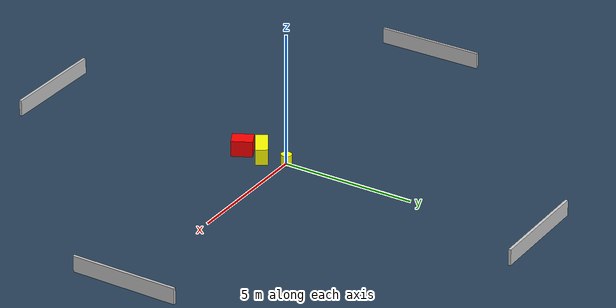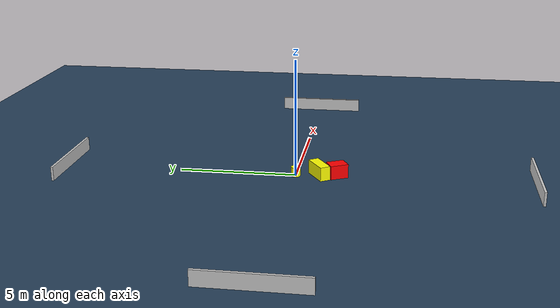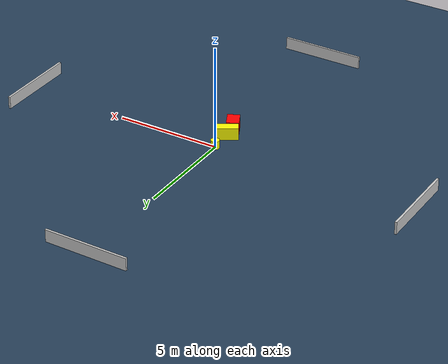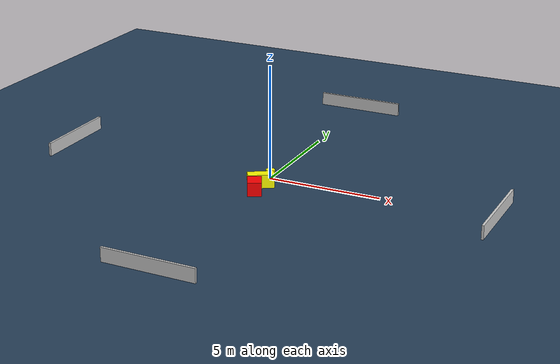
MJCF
<?xml version="1.0" ?>
<mujoco model="generated_environment">
  <option timestep="0.01" integrator="RK4" cone="elliptic"/>
  <default>
    <geom density="1"/>
  </default>
  <asset>
    <texture builtin="gradient" height="3072" name="skybox" rgb1="0.3 0.5 0.7" rgb2="0 0 0" type="skybox" width="512"/>
    <texture builtin="checker" height="300" name="groundplane" rgb1="0.2 0.3 0.4" rgb2="0.1 0.2 0.3" type="2d" width="300"/>
    <material name="groundplane" reflectance="0.2" texrepeat="5 5" texture="groundplane"/>
  </asset>
  <worldbody>
    <light dir="0 0 -1" directional="true" pos="0 0 1.5"/>
    <geom condim="3" friction="0.5 0.005 0.001" material="groundplane" name="floor" pos="0 0 0" size="0 0 0.05" type="plane"/>
    <body name="walls">
      <geom name="wall_1" condim="4" pos="-10.0 0.0 0.3" rgba="0.800000011920929 0.800000011920929 0.800000011920929 1.0" size="0.05 2.0 0.3" type="box"/>
      <geom name="wall_2" condim="4" pos="10.0 0.0 0.3" rgba="0.800000011920929 0.800000011920929 0.800000011920929 1.0" size="0.05 2.0 0.3" type="box"/>
      <geom name="wall_3" condim="4" pos="0.0 -10.0 0.3" rgba="0.800000011920929 0.800000011920929 0.800000011920929 1.0" size="2.0 0.05 0.3" type="box"/>
      <geom name="wall_4" condim="4" pos="0.0 10.0 0.3" rgba="0.800000011920929 0.800000011920929 0.800000011920929 1.0" size="2.0 0.05 0.3" type="box"/>
    </body>
    <body name="robot">
      <joint name="joint_x" type="slide" pos="0 0 0" axis="1 0 0"/>
      <joint name="joint_y" type="slide" pos="0 0 0" axis="0 1 0"/>
      <geom name="robot" type="cylinder" pos="0.0 0.0 0.2" size="0.2 0.2 0.0" mass="5.0" friction="1.0 0.005 0.0001" condim="4" rgba="1.0 1.0 0.0 1.0"/>
    </body>
    <body name="obstacle_1_movable">
      <geom name="obstacle_1_movable" condim="4" pos="0.038140554380462655 -0.9988705496073532 0.3" euler="0 0 122.78183266945862" friction="0.0 0.005 0.001" rgba="1.0 1.0 0.0 1.0" size="0.2275537316462773 0.5656075654628197 0.3" type="box" mass="0.1"/>
      <joint type="free"/>
    </body>
    <body name="obstacle_2_static">
      <geom name="obstacle_2_static" condim="4" pos="0.11666260208267992 -1.746692436929892 0.3" euler="0 0 296.99530175482374" friction="0.0 0.005 0.001" rgba="1.0 0.0 0.0 1.0" size="0.389502440518286 0.2963815185041246 0.3" type="box"/>
    </body>
  </worldbody>
  <actuator>
    <motor name="actuator_x" joint="joint_x" gear="1" ctrlrange="-1 1"/>
    <motor name="actuator_y" joint="joint_y" gear="1" ctrlrange="-1 1"/>
  </actuator>
</mujoco>
